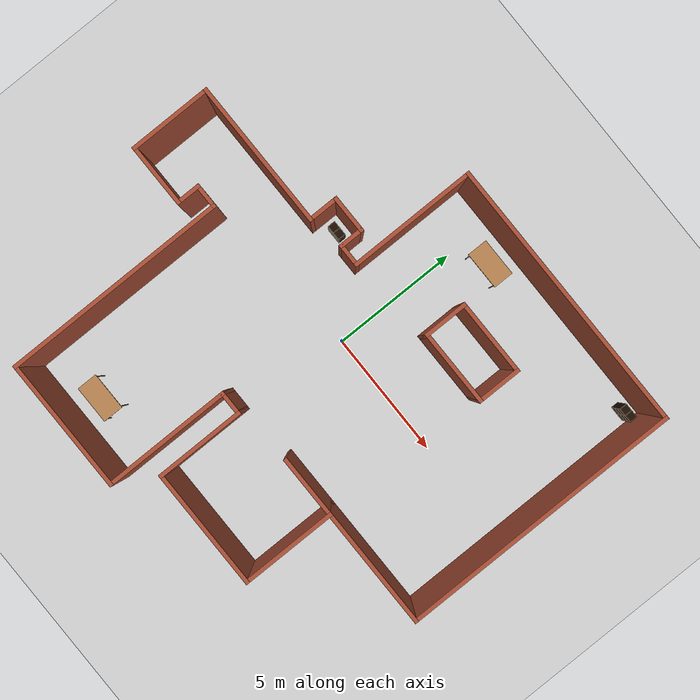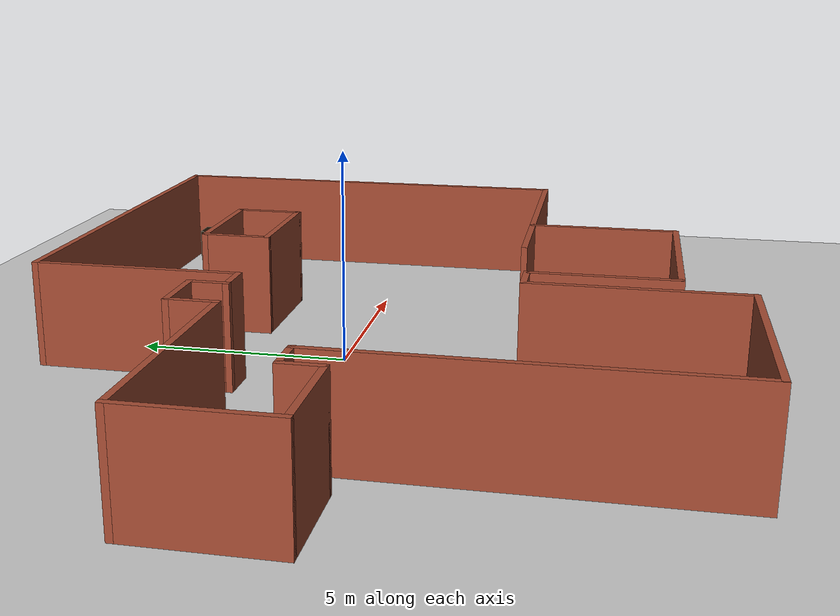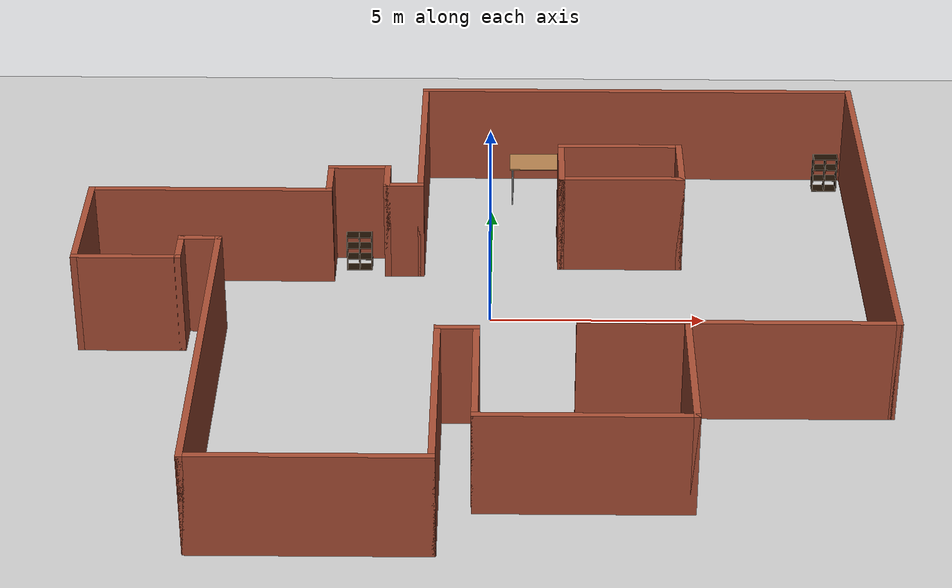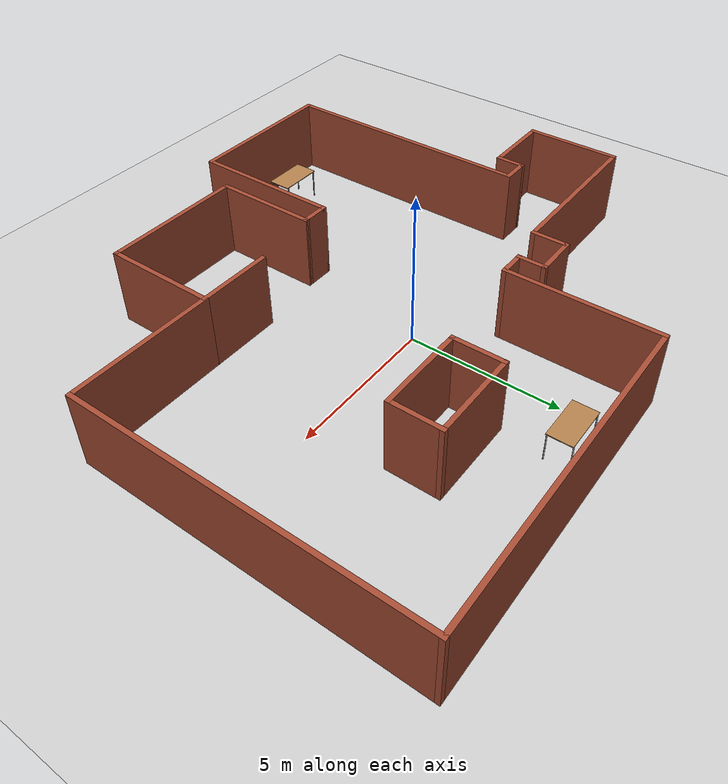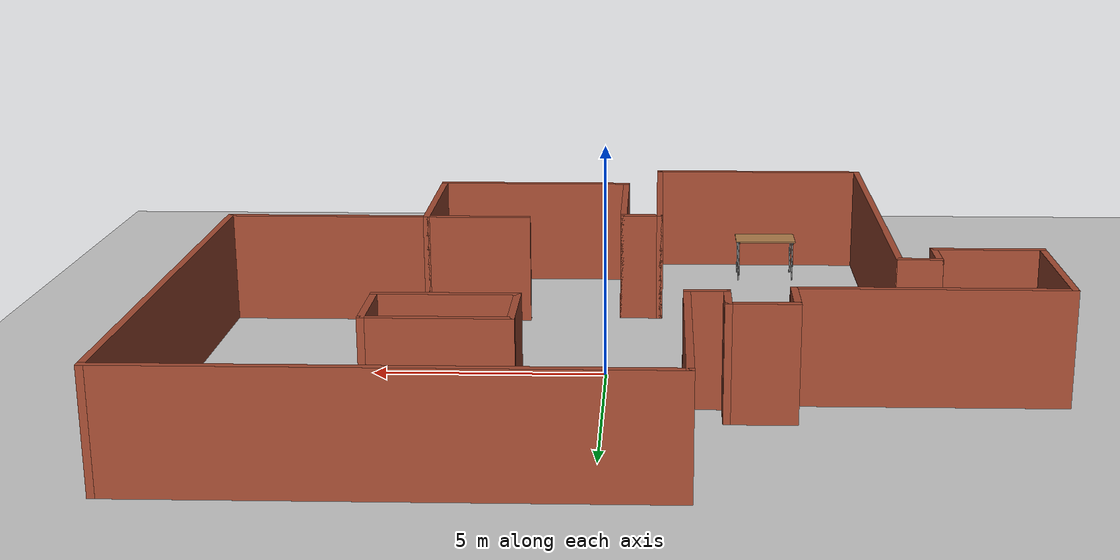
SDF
<sdf version="1.6">
 <world name="default">
  <light name="sun" type="directional">
   <pose>0 0 10 0 -0 0</pose>
   <diffuse>0.8 0.8 0.8 1</diffuse>
   <specular>0.2 0.2 0.2 1</specular>
   <attenuation>
    <range>1000</range>
    <constant>0.9</constant>
    <linear>0.01</linear>
    <quadratic>0.001</quadratic>
   </attenuation>
   <direction>-0.5 0.1 -0.9</direction>
  </light>
  <model name="ground_plane">
   <static>1</static>
   <link name="link">
    <collision name="collision">
     <geometry><plane><normal>0 0 1</normal><size>100 100</size></plane></geometry>
     <surface>
      <contact><collide_bitmask>65535</collide_bitmask></contact>
      <friction><ode><mu>100</mu><mu2>50</mu2></ode></friction>
     </surface>
    </collision>
    <visual name="visual">
     <cast_shadows>0</cast_shadows>
     <geometry><plane><normal>0 0 1</normal><size>100 100</size></plane></geometry>
     <material>
      <script><uri>file://media/materials/scripts/gazebo.material</uri><name>Gazebo/Grey</name></script>
     </material>
    </visual>
   </link>
  </model>
  <gravity>0 0 -9.8</gravity>
  <magnetic_field>6e-06 2.3e-05 -4.2e-05</magnetic_field>
  <atmosphere type="adiabatic"/>
  <physics name="default_physics" default="0" type="ode">
   <max_step_size>0.001</max_step_size>
   <real_time_factor>1</real_time_factor>
   <real_time_update_rate>1000</real_time_update_rate>
  </physics>
  <scene><ambient>0.4 0.4 0.4 1</ambient><background>0.7 0.7 0.7 1</background><shadows>1</shadows></scene>
  <audio><device>default</device></audio>
  <spherical_coordinates>
   <surface_model>EARTH_WGS84</surface_model>
   <latitude_deg>0</latitude_deg>
   <longitude_deg>0</longitude_deg>
   <elevation>0</elevation>
   <heading_deg>0</heading_deg>
  </spherical_coordinates>
  <model name="map_124">
   <pose>-0.253332 -1.11751 0 0 -0 0</pose>
   <link name="Wall_21">
    <collision name="Wall_21_Collision">
     <geometry><box><size>1 0.15 2.5</size></box></geometry>
     <pose>0 0 1.25 0 -0 0</pose>
    </collision>
    <visual name="Wall_21_Visual">
     <pose>0 0 1.25 0 -0 0</pose>
     <geometry><box><size>1 0.15 2.5</size></box></geometry>
     <material>
      <script><uri>file://media/materials/scripts/gazebo.material</uri><name>Gazebo/Bricks</name></script>
      <ambient>1 1 1 1</ambient>
     </material>
     <meta><layer>0</layer></meta>
    </visual>
    <pose>-2.225 3.55 0 0 -0 1.5708</pose>
   </link>
   <link name="Wall_22">
    <collision name="Wall_22_Collision">
     <geometry><box><size>1.5 0.15 2.5</size></box></geometry>
     <pose>0 0 1.25 0 -0 0</pose>
    </collision>
    <visual name="Wall_22_Visual">
     <pose>0 0 1.25 0 -0 0</pose>
     <geometry><box><size>1.5 0.15 2.5</size></box></geometry>
     <material>
      <script><uri>file://media/materials/scripts/gazebo.material</uri><name>Gazebo/Bricks</name></script>
      <ambient>1 1 1 1</ambient>
     </material>
     <meta><layer>0</layer></meta>
    </visual>
    <pose>-2.9 3.975 0 0 -0 3.14159</pose>
   </link>
   <link name="Wall_23">
    <collision name="Wall_23_Collision">
     <geometry><box><size>1.25 0.15 2.5</size></box></geometry>
     <pose>0 0 1.25 0 -0 0</pose>
    </collision>
    <visual name="Wall_23_Visual">
     <pose>0 0 1.25 0 -0 0</pose>
     <geometry><box><size>1.25 0.15 2.5</size></box></geometry>
     <material>
      <script><uri>file://media/materials/scripts/gazebo.material</uri><name>Gazebo/Bricks</name></script>
      <ambient>1 1 1 1</ambient>
     </material>
     <meta><layer>0</layer></meta>
    </visual>
    <pose>-3.575 3.425 0 0 -0 -1.5708</pose>
   </link>
   <link name="Wall_24">
    <collision name="Wall_24_Collision">
     <geometry><box><size>5.75 0.15 2.5</size></box></geometry>
     <pose>0 0 1.25 0 -0 0</pose>
    </collision>
    <visual name="Wall_24_Visual">
     <pose>0 0 1.25 0 -0 0</pose>
     <geometry><box><size>5.75 0.15 2.5</size></box></geometry>
     <material>
      <script><uri>file://media/materials/scripts/gazebo.material</uri><name>Gazebo/Bricks</name></script>
      <ambient>1 1 1 1</ambient>
     </material>
     <meta><layer>0</layer></meta>
    </visual>
    <pose>-6.375 2.875 0 0 -0 3.14159</pose>
   </link>
   <link name="Wall_25">
    <collision name="Wall_25_Collision">
     <geometry><box><size>3.25 0.15 2.5</size></box></geometry>
     <pose>0 0 1.25 0 -0 0</pose>
    </collision>
    <visual name="Wall_25_Visual">
     <pose>0 0 1.25 0 -0 0</pose>
     <geometry><box><size>3.25 0.15 2.5</size></box></geometry>
     <material>
      <script><uri>file://media/materials/scripts/gazebo.material</uri><name>Gazebo/Bricks</name></script>
      <ambient>1 1 1 1</ambient>
     </material>
     <meta><layer>0</layer></meta>
    </visual>
    <pose>-9.175 1.325 0 0 -0 -1.5708</pose>
   </link>
   <link name="Wall_26">
    <collision name="Wall_26_Collision">
     <geometry><box><size>2.5 0.15 2.5</size></box></geometry>
     <pose>0 0 1.25 0 -0 0</pose>
    </collision>
    <visual name="Wall_26_Visual">
     <pose>0 0 1.25 0 -0 0</pose>
     <geometry><box><size>2.5 0.15 2.5</size></box></geometry>
     <material>
      <script><uri>file://media/materials/scripts/gazebo.material</uri><name>Gazebo/Bricks</name></script>
      <ambient>1 1 1 1</ambient>
     </material>
     <meta><layer>0</layer></meta>
    </visual>
    <pose>-8 -0.225 0 0 -0 0</pose>
   </link>
   <link name="Wall_27">
    <collision name="Wall_27_Collision">
     <geometry><box><size>1 0.15 2.5</size></box></geometry>
     <pose>0 0 1.25 0 -0 0</pose>
    </collision>
    <visual name="Wall_27_Visual">
     <pose>0 0 1.25 0 -0 0</pose>
     <geometry><box><size>1 0.15 2.5</size></box></geometry>
     <material>
      <script><uri>file://media/materials/scripts/gazebo.material</uri><name>Gazebo/Bricks</name></script>
      <ambient>1 1 1 1</ambient>
     </material>
     <meta><layer>0</layer></meta>
    </visual>
    <pose>-6.825 0.2 0 0 -0 1.5708</pose>
   </link>
   <link name="Wall_28">
    <collision name="Wall_28_Collision">
     <geometry><box><size>1 0.15 2.5</size></box></geometry>
     <pose>0 0 1.25 0 -0 0</pose>
    </collision>
    <visual name="Wall_28_Visual">
     <pose>0 0 1.25 0 -0 0</pose>
     <geometry><box><size>1 0.15 2.5</size></box></geometry>
     <material>
      <script><uri>file://media/materials/scripts/gazebo.material</uri><name>Gazebo/Bricks</name></script>
      <ambient>1 1 1 1</ambient>
     </material>
     <meta><layer>0</layer></meta>
    </visual>
    <pose>-6.4 0.625 0 0 -0 0</pose>
   </link>
   <link name="Wall_29">
    <collision name="Wall_29_Collision">
     <geometry><box><size>8.75 0.15 2.5</size></box></geometry>
     <pose>0 0 1.25 0 -0 0</pose>
    </collision>
    <visual name="Wall_29_Visual">
     <pose>0 0 1.25 0 -0 0</pose>
     <geometry><box><size>8.75 0.15 2.5</size></box></geometry>
     <material>
      <script><uri>file://media/materials/scripts/gazebo.material</uri><name>Gazebo/Bricks</name></script>
      <ambient>1 1 1 1</ambient>
     </material>
     <meta><layer>0</layer></meta>
    </visual>
    <pose>-5.975 -3.675 0 0 -0 -1.5708</pose>
   </link>
   <link name="Wall_30">
    <collision name="Wall_30_Collision">
     <geometry><box><size>5.25 0.15 2.5</size></box></geometry>
     <pose>0 0 1.25 0 -0 0</pose>
    </collision>
    <visual name="Wall_30_Visual">
     <pose>0 0 1.25 0 -0 0</pose>
     <geometry><box><size>5.25 0.15 2.5</size></box></geometry>
     <material>
      <script><uri>file://media/materials/scripts/gazebo.material</uri><name>Gazebo/Bricks</name></script>
      <ambient>1 1 1 1</ambient>
     </material>
     <meta><layer>0</layer></meta>
    </visual>
    <pose>-3.425 -7.975 0 0 -0 0</pose>
   </link>
   <link name="Wall_31">
    <collision name="Wall_31_Collision">
     <geometry><box><size>5 0.15 2.5</size></box></geometry>
     <pose>0 0 1.25 0 -0 0</pose>
    </collision>
    <visual name="Wall_31_Visual">
     <pose>0 0 1.25 0 -0 0</pose>
     <geometry><box><size>5 0.15 2.5</size></box></geometry>
     <material>
      <script><uri>file://media/materials/scripts/gazebo.material</uri><name>Gazebo/Bricks</name></script>
      <ambient>1 1 1 1</ambient>
     </material>
     <meta><layer>0</layer></meta>
    </visual>
    <pose>-0.875 -5.55 0 0 -0 1.5708</pose>
   </link>
   <link name="Wall_32">
    <collision name="Wall_32_Collision">
     <geometry><box><size>1 0.15 2.5</size></box></geometry>
     <pose>0 0 1.25 0 -0 0</pose>
    </collision>
    <visual name="Wall_32_Visual">
     <pose>0 0 1.25 0 -0 0</pose>
     <geometry><box><size>1 0.15 2.5</size></box></geometry>
     <material>
      <script><uri>file://media/materials/scripts/gazebo.material</uri><name>Gazebo/Bricks</name></script>
      <ambient>1 1 1 1</ambient>
     </material>
     <meta><layer>0</layer></meta>
    </visual>
    <pose>-0.450001 -3.125 0 0 -0 0</pose>
   </link>
   <link name="Wall_33">
    <collision name="Wall_33_Collision">
     <geometry><box><size>3.5 0.15 2.5</size></box></geometry>
     <pose>0 0 1.25 0 -0 0</pose>
    </collision>
    <visual name="Wall_33_Visual">
     <pose>0 0 1.25 0 -0 0</pose>
     <geometry><box><size>3.5 0.15 2.5</size></box></geometry>
     <material>
      <script><uri>file://media/materials/scripts/gazebo.material</uri><name>Gazebo/Bricks</name></script>
      <ambient>1 1 1 1</ambient>
     </material>
     <meta><layer>0</layer></meta>
    </visual>
    <pose>-0.025 -4.8 0 0 -0 -1.5708</pose>
   </link>
   <link name="Wall_35">
    <collision name="Wall_35_Collision">
     <geometry><box><size>4.75 0.15 2.5</size></box></geometry>
     <pose>0 0 1.25 0 -0 0</pose>
    </collision>
    <visual name="Wall_35_Visual">
     <pose>0 0 1.25 0 -0 0</pose>
     <geometry><box><size>4.75 0.15 2.5</size></box></geometry>
     <material>
      <script><uri>file://media/materials/scripts/gazebo.material</uri><name>Gazebo/Bricks</name></script>
      <ambient>1 1 1 1</ambient>
     </material>
     <meta><layer>0</layer></meta>
    </visual>
    <pose>2.275 -6.475 0 0 -0 0</pose>
   </link>
   <link name="Wall_36">
    <collision name="Wall_36_Collision">
     <geometry><box><size>3.75 0.15 2.5</size></box></geometry>
     <pose>0 0 1.25 0 -0 0</pose>
    </collision>
    <visual name="Wall_36_Visual">
     <pose>0 0 1.25 0 -0 0</pose>
     <geometry><box><size>3.75 0.15 2.5</size></box></geometry>
     <material>
      <script><uri>file://media/materials/scripts/gazebo.material</uri><name>Gazebo/Bricks</name></script>
      <ambient>1 1 1 1</ambient>
     </material>
     <meta><layer>0</layer></meta>
    </visual>
    <pose>4.575 -4.675 0 0 -0 1.5708</pose>
   </link>
   <link name="Wall_37">
    <collision name="Wall_37_Collision">
     <geometry><box><size>2.5 0.15 2.5</size></box></geometry>
     <pose>0 0 1.25 0 -0 0</pose>
    </collision>
    <visual name="Wall_37_Visual">
     <pose>0 0 1.25 0 -0 0</pose>
     <geometry><box><size>2.5 0.15 2.5</size></box></geometry>
     <material>
      <script><uri>file://media/materials/scripts/gazebo.material</uri><name>Gazebo/Bricks</name></script>
      <ambient>1 1 1 1</ambient>
     </material>
     <meta><layer>0</layer></meta>
    </visual>
    <pose>3.4 -2.875 0 0 -0 3.14159</pose>
   </link>
   <link name="Wall_39">
    <collision name="Wall_39_Collision">
     <geometry><box><size>4.75 0.15 2.5</size></box></geometry>
     <pose>0 0 1.25 0 -0 0</pose>
    </collision>
    <visual name="Wall_39_Visual">
     <pose>0 0 1.25 0 -0 0</pose>
     <geometry><box><size>4.75 0.15 2.5</size></box></geometry>
     <material>
      <script><uri>file://media/materials/scripts/gazebo.material</uri><name>Gazebo/Bricks</name></script>
      <ambient>1 1 1 1</ambient>
     </material>
     <meta><layer>0</layer></meta>
    </visual>
    <pose>6.875 -2.875 0 0 -0 0</pose>
   </link>
   <link name="Wall_40">
    <collision name="Wall_40_Collision">
     <geometry><box><size>11 0.15 2.5</size></box></geometry>
     <pose>0 0 1.25 0 -0 0</pose>
    </collision>
    <visual name="Wall_40_Visual">
     <pose>0 0 1.25 0 -0 0</pose>
     <geometry><box><size>11 0.15 2.5</size></box></geometry>
     <material>
      <script><uri>file://media/materials/scripts/gazebo.material</uri><name>Gazebo/Bricks</name></script>
      <ambient>1 1 1 1</ambient>
     </material>
     <meta><layer>0</layer></meta>
    </visual>
    <pose>9.175 2.55 0 0 -0 1.5708</pose>
   </link>
   <link name="Wall_41">
    <collision name="Wall_41_Collision">
     <geometry><box><size>10.75 0.15 2.5</size></box></geometry>
     <pose>0 0 1.25 0 -0 0</pose>
    </collision>
    <visual name="Wall_41_Visual">
     <pose>0 0 1.25 0 -0 0</pose>
     <geometry><box><size>10.75 0.15 2.5</size></box></geometry>
     <material>
      <script><uri>file://media/materials/scripts/gazebo.material</uri><name>Gazebo/Bricks</name></script>
      <ambient>1 1 1 1</ambient>
     </material>
     <meta><layer>0</layer></meta>
    </visual>
    <pose>3.875 7.975 0 0 -0 3.14159</pose>
   </link>
   <link name="Wall_45">
    <collision name="Wall_45_Collision">
     <geometry><box><size>5 0.15 2.5</size></box></geometry>
     <pose>0 0 1.25 0 -0 0</pose>
    </collision>
    <visual name="Wall_45_Visual">
     <pose>0 0 1.25 0 -0 0</pose>
     <geometry><box><size>5 0.15 2.5</size></box></geometry>
     <material>
      <script><uri>file://media/materials/scripts/gazebo.material</uri><name>Gazebo/Bricks</name></script>
      <ambient>1 1 1 1</ambient>
     </material>
     <meta><layer>0</layer></meta>
    </visual>
    <pose>-1.425 5.55 0 0 -0 -1.5708</pose>
   </link>
   <link name="Wall_46">
    <collision name="Wall_46_Collision">
     <geometry><box><size>0.95 0.15 2.5</size></box></geometry>
     <pose>0 0 1.25 0 -0 0</pose>
    </collision>
    <visual name="Wall_46_Visual">
     <pose>0 0 1.25 0 -0 0</pose>
     <geometry><box><size>0.95 0.15 2.5</size></box></geometry>
     <material>
      <script><uri>file://media/materials/scripts/gazebo.material</uri><name>Gazebo/Bricks</name></script>
      <ambient>1 1 1 1</ambient>
     </material>
     <meta><layer>0</layer></meta>
    </visual>
    <pose>-1.825 3.125 0 0 -0 3.14159</pose>
   </link>
   <link name="Wall_48">
    <collision name="Wall_48_Collision">
     <geometry><box><size>1.75 0.15 2.5</size></box></geometry>
     <pose>0 0 1.25 0 -0 0</pose>
    </collision>
    <visual name="Wall_48_Visual">
     <pose>0 0 1.25 0 -0 0</pose>
     <geometry><box><size>1.75 0.15 2.5</size></box></geometry>
     <material>
      <script><uri>file://media/materials/scripts/gazebo.material</uri><name>Gazebo/Bricks</name></script>
      <ambient>1 1 1 1</ambient>
     </material>
     <meta><layer>0</layer></meta>
    </visual>
    <pose>1.92464 4.2849 0 0 -0 -1.5708</pose>
   </link>
   <link name="Wall_49">
    <collision name="Wall_49_Collision">
     <geometry><box><size>3 0.15 2.5</size></box></geometry>
     <pose>0 0 1.25 0 -0 0</pose>
    </collision>
    <visual name="Wall_49_Visual">
     <pose>0 0 1.25 0 -0 0</pose>
     <geometry><box><size>3 0.15 2.5</size></box></geometry>
     <material>
      <script><uri>file://media/materials/scripts/gazebo.material</uri><name>Gazebo/Bricks</name></script>
      <ambient>1 1 1 1</ambient>
     </material>
     <meta><layer>0</layer></meta>
    </visual>
    <pose>3.34964 3.4849 0 0 -0 0</pose>
   </link>
   <link name="Wall_50">
    <collision name="Wall_50_Collision">
     <geometry><box><size>1.75 0.15 2.5</size></box></geometry>
     <pose>0 0 1.25 0 -0 0</pose>
    </collision>
    <visual name="Wall_50_Visual">
     <pose>0 0 1.25 0 -0 0</pose>
     <geometry><box><size>1.75 0.15 2.5</size></box></geometry>
     <material>
      <script><uri>file://media/materials/scripts/gazebo.material</uri><name>Gazebo/Bricks</name></script>
      <ambient>1 1 1 1</ambient>
     </material>
     <meta><layer>0</layer></meta>
    </visual>
    <pose>4.77464 4.2849 0 0 -0 1.5708</pose>
   </link>
   <link name="Wall_51">
    <collision name="Wall_51_Collision">
     <geometry><box><size>3 0.15 2.5</size></box></geometry>
     <pose>0 0 1.25 0 -0 0</pose>
    </collision>
    <visual name="Wall_51_Visual">
     <pose>0 0 1.25 0 -0 0</pose>
     <geometry><box><size>3 0.15 2.5</size></box></geometry>
     <material>
      <script><uri>file://media/materials/scripts/gazebo.material</uri><name>Gazebo/Bricks</name></script>
      <ambient>1 1 1 1</ambient>
     </material>
     <meta><layer>0</layer></meta>
    </visual>
    <pose>3.34964 5.0849 0 0 -0 3.14159</pose>
   </link>
   <static>1</static>
  </model>
  <model name="table">
   <static>1</static>
   <link name="link">
    <collision name="surface">
     <pose>0 0 1 0 -0 0</pose>
     <geometry><box><size>1.5 0.8 0.03</size></box></geometry>
     <surface><friction><ode><mu>0.6</mu><mu2>0.6</mu2></ode></friction></surface>
    </collision>
    <visual name="visual1">
     <pose>0 0 1 0 -0 0</pose>
     <geometry><box><size>1.5 0.8 0.03</size></box></geometry>
     <material>
      <script><uri>file://media/materials/scripts/gazebo.material</uri><name>Gazebo/Wood</name></script>
     </material>
    </visual>
    <collision name="front_left_leg">
     <pose>0.68 0.38 0.5 0 -0 0</pose>
     <geometry><cylinder><radius>0.02</radius><length>1</length></cylinder></geometry>
    </collision>
    <visual name="front_left_leg">
     <pose>0.68 0.38 0.5 0 -0 0</pose>
     <geometry><cylinder><radius>0.02</radius><length>1</length></cylinder></geometry>
     <material>
      <script><uri>file://media/materials/scripts/gazebo.material</uri><name>Gazebo/Grey</name></script>
     </material>
    </visual>
    <collision name="front_right_leg">
     <pose>0.68 -0.38 0.5 0 -0 0</pose>
     <geometry><cylinder><radius>0.02</radius><length>1</length></cylinder></geometry>
    </collision>
    <visual name="front_right_leg">
     <pose>0.68 -0.38 0.5 0 -0 0</pose>
     <geometry><cylinder><radius>0.02</radius><length>1</length></cylinder></geometry>
     <material>
      <script><uri>file://media/materials/scripts/gazebo.material</uri><name>Gazebo/Grey</name></script>
     </material>
    </visual>
    <collision name="back_right_leg">
     <pose>-0.68 -0.38 0.5 0 -0 0</pose>
     <geometry><cylinder><radius>0.02</radius><length>1</length></cylinder></geometry>
    </collision>
    <visual name="back_right_leg">
     <pose>-0.68 -0.38 0.5 0 -0 0</pose>
     <geometry><cylinder><radius>0.02</radius><length>1</length></cylinder></geometry>
     <material>
      <script><uri>file://media/materials/scripts/gazebo.material</uri><name>Gazebo/Grey</name></script>
     </material>
    </visual>
    <collision name="back_left_leg">
     <pose>-0.68 0.38 0.5 0 -0 0</pose>
     <geometry><cylinder><radius>0.02</radius><length>1</length></cylinder></geometry>
    </collision>
    <visual name="back_left_leg">
     <pose>-0.68 0.38 0.5 0 -0 0</pose>
     <geometry><cylinder><radius>0.02</radius><length>1</length></cylinder></geometry>
     <material>
      <script><uri>file://media/materials/scripts/gazebo.material</uri><name>Gazebo/Grey</name></script>
     </material>
    </visual>
   </link>
   <pose>-3.82763 -7.9312 0 0 -0 0</pose>
  </model>
  <model name="6_Cube_StorageE">
   <link name="Wall_0">
    <pose>0 0 0.01 0 -0 0</pose>
    <inertial>
     <mass>1.6201</mass>
     <inertia><ixx>0.0119</ixx><iyy>0.0631</iyy><izz>0.0513</izz><ixy>0</ixy><ixz>0</ixz><iyz>0</iyz></inertia>
    </inertial>
    <collision name="Wall_0_Collision"><geometry><box><size>0.616 0.296 0.02</size></box></geometry></collision>
    <visual name="Wall_0_Visual">
     <geometry><box><size>0.616 0.296 0.02</size></box></geometry>
     <material>
      <script><uri>file://media/materials/scripts/gazebo.material</uri><name>Gazebo/Grey</name></script>
      <ambient>0.105882 0.0509804 0 1</ambient>
     </material>
    </visual>
   </link>
   <joint name="0_2" type="fixed">
    <pose>-0.308 0 0 0 -0 0</pose>
    <parent>Wall_2</parent>
    <child>Wall_0</child>
    <axis>
     <xyz>1 0 0</xyz>
     <use_parent_model_frame>0</use_parent_model_frame>
     <limit><lower>-1e+16</lower><upper>1e+16</upper></limit>
    </axis>
   </joint>
   <joint name="0_12" type="fixed">
    <parent>Wall_12</parent>
    <child>Wall_0</child>
    <axis>
     <xyz>0 0 1</xyz>
     <use_parent_model_frame>0</use_parent_model_frame>
     <limit><lower>-1e+16</lower><upper>1e+16</upper></limit>
    </axis>
   </joint>
   <joint name="0_4" type="fixed">
    <pose>0.308 0 0 0 -0 0</pose>
    <parent>Wall_4</parent>
    <child>Wall_0</child>
    <axis>
     <xyz>1 0 0</xyz>
     <use_parent_model_frame>0</use_parent_model_frame>
     <limit><lower>-1e+16</lower><upper>1e+16</upper></limit>
    </axis>
   </joint>
   <link name="Wall_10">
    <pose>0 0 0.61 0 -0 0</pose>
    <inertial>
     <mass>1.6201</mass>
     <inertia><ixx>0.0119</ixx><iyy>0.0631</iyy><izz>0.0513</izz><ixy>0</ixy><ixz>0</ixz><iyz>0</iyz></inertia>
    </inertial>
    <collision name="Wall_10_Collision"><geometry><box><size>0.616 0.296 0.02</size></box></geometry></collision>
    <visual name="Wall_10_Visual">
     <geometry><box><size>0.616 0.296 0.02</size></box></geometry>
     <material>
      <script><uri>file://media/materials/scripts/gazebo.material</uri><name>Gazebo/Grey</name></script>
      <ambient>0.105882 0.0509804 0 1</ambient>
     </material>
    </visual>
   </link>
   <joint name="10_2" type="fixed">
    <pose>-0.308 0 0 0 -0 0</pose>
    <parent>Wall_2</parent>
    <child>Wall_10</child>
    <axis>
     <xyz>1 0 0</xyz>
     <use_parent_model_frame>0</use_parent_model_frame>
     <limit><lower>-1e+16</lower><upper>1e+16</upper></limit>
    </axis>
   </joint>
   <joint name="10_12" type="fixed">
    <parent>Wall_12</parent>
    <child>Wall_10</child>
    <axis>
     <xyz>0 0 1</xyz>
     <use_parent_model_frame>0</use_parent_model_frame>
     <limit><lower>-1e+16</lower><upper>1e+16</upper></limit>
    </axis>
   </joint>
   <joint name="10_4" type="fixed">
    <pose>0.308 0 0 0 -0 0</pose>
    <parent>Wall_4</parent>
    <child>Wall_10</child>
    <axis>
     <xyz>1 0 0</xyz>
     <use_parent_model_frame>0</use_parent_model_frame>
     <limit><lower>-1e+16</lower><upper>1e+16</upper></limit>
    </axis>
   </joint>
   <link name="Wall_12">
    <pose>0 0 0.4575 0 -0 0</pose>
    <inertial>
     <mass>2.4065</mass>
     <inertia><ixx>0.0177</ixx><iyy>0.1855</iyy><izz>0.168</izz><ixy>0</ixy><ixz>0</ixz><iyz>0</iyz></inertia>
    </inertial>
    <collision name="Wall_12_Collision"><geometry><box><size>0.02 0.296 0.915</size></box></geometry></collision>
    <visual name="Wall_12_Visual">
     <geometry><box><size>0.02 0.296 0.915</size></box></geometry>
     <material>
      <script><uri>file://media/materials/scripts/gazebo.material</uri><name>Gazebo/Grey</name></script>
      <ambient>0.105882 0.0509804 0 1</ambient>
     </material>
    </visual>
   </link>
   <link name="Wall_2">
    <pose>-0.298 0 0.4575 0 -0 0</pose>
    <inertial>
     <mass>2.4065</mass>
     <inertia><ixx>0.0177</ixx><iyy>0.1855</iyy><izz>0.168</izz><ixy>0</ixy><ixz>0</ixz><iyz>0</iyz></inertia>
    </inertial>
    <collision name="Wall_2_Collision"><geometry><box><size>0.02 0.296 0.915</size></box></geometry></collision>
    <visual name="Wall_2_Visual">
     <geometry><box><size>0.02 0.296 0.915</size></box></geometry>
     <material>
      <script><uri>file://media/materials/scripts/gazebo.material</uri><name>Gazebo/Grey</name></script>
      <ambient>0.105882 0.0509804 0 1</ambient>
     </material>
    </visual>
   </link>
   <link name="Wall_4">
    <pose>0.298 0 0.4575 0 -0 0</pose>
    <inertial>
     <mass>2.4065</mass>
     <inertia><ixx>0.0177</ixx><iyy>0.1855</iyy><izz>0.168</izz><ixy>0</ixy><ixz>0</ixz><iyz>0</iyz></inertia>
    </inertial>
    <collision name="Wall_4_Collision"><geometry><box><size>0.02 0.296 0.915</size></box></geometry></collision>
    <visual name="Wall_4_Visual">
     <geometry><box><size>0.02 0.296 0.915</size></box></geometry>
     <material>
      <script><uri>file://media/materials/scripts/gazebo.material</uri><name>Gazebo/Grey</name></script>
      <ambient>0.105882 0.0509804 0 1</ambient>
     </material>
    </visual>
   </link>
   <link name="Wall_6">
    <pose>0 0 0.905 0 -0 0</pose>
    <inertial>
     <mass>1.6201</mass>
     <inertia><ixx>0.0119</ixx><iyy>0.0631</iyy><izz>0.0513</izz><ixy>0</ixy><ixz>0</ixz><iyz>0</iyz></inertia>
    </inertial>
    <collision name="Wall_6_Collision"><geometry><box><size>0.616 0.296 0.02</size></box></geometry></collision>
    <visual name="Wall_6_Visual">
     <geometry><box><size>0.616 0.296 0.02</size></box></geometry>
     <material>
      <script><uri>file://media/materials/scripts/gazebo.material</uri><name>Gazebo/Grey</name></script>
      <ambient>0.105882 0.0509804 0 1</ambient>
     </material>
    </visual>
   </link>
   <joint name="6_2" type="fixed">
    <pose>-0.308 0 0 0 -0 0</pose>
    <parent>Wall_2</parent>
    <child>Wall_6</child>
    <axis>
     <xyz>2 0 0</xyz>
     <use_parent_model_frame>0</use_parent_model_frame>
     <limit><lower>-1e+16</lower><upper>1e+16</upper></limit>
    </axis>
   </joint>
   <joint name="6_12" type="fixed">
    <parent>Wall_12</parent>
    <child>Wall_6</child>
    <axis>
     <xyz>0 0 1</xyz>
     <use_parent_model_frame>0</use_parent_model_frame>
     <limit><lower>-1e+16</lower><upper>1e+16</upper></limit>
    </axis>
   </joint>
   <joint name="6_4" type="fixed">
    <pose>0.308 0 0 0 -0 0</pose>
    <parent>Wall_4</parent>
    <child>Wall_6</child>
    <axis>
     <xyz>1 0 0</xyz>
     <use_parent_model_frame>0</use_parent_model_frame>
     <limit><lower>-1e+16</lower><upper>1e+16</upper></limit>
    </axis>
   </joint>
   <link name="Wall_8">
    <pose>0 0 0.305 0 -0 0</pose>
    <inertial>
     <mass>1.6201</mass>
     <inertia><ixx>0.0119</ixx><iyy>0.0631</iyy><izz>0.0513</izz><ixy>0</ixy><ixz>0</ixz><iyz>0</iyz></inertia>
    </inertial>
    <collision name="Wall_8_Collision"><geometry><box><size>0.616 0.296 0.02</size></box></geometry></collision>
    <visual name="Wall_8_Visual">
     <geometry><box><size>0.616 0.296 0.02</size></box></geometry>
     <material>
      <script><uri>file://media/materials/scripts/gazebo.material</uri><name>Gazebo/Grey</name></script>
      <ambient>0.105882 0.0509804 0 1</ambient>
     </material>
    </visual>
   </link>
   <joint name="8_2" type="fixed">
    <pose>-0.308 0 0 0 -0 0</pose>
    <parent>Wall_2</parent>
    <child>Wall_8</child>
    <axis>
     <xyz>1 0 0</xyz>
     <use_parent_model_frame>0</use_parent_model_frame>
     <limit><lower>-1e+16</lower><upper>1e+16</upper></limit>
    </axis>
   </joint>
   <joint name="8_12" type="fixed">
    <parent>Wall_12</parent>
    <child>Wall_8</child>
    <axis>
     <xyz>0 0 1</xyz>
     <use_parent_model_frame>0</use_parent_model_frame>
     <limit><lower>-1e+16</lower><upper>1e+16</upper></limit>
    </axis>
   </joint>
   <joint name="8_4" type="fixed">
    <pose>0.308 0 0 0 -0 0</pose>
    <parent>Wall_4</parent>
    <child>Wall_8</child>
    <axis>
     <xyz>1 0 0</xyz>
     <use_parent_model_frame>0</use_parent_model_frame>
     <limit><lower>-1e+16</lower><upper>1e+16</upper></limit>
    </axis>
   </joint>
   <static>1</static>
   <pose>-3.17967 2.35101 0 0 -0 0</pose>
  </model>
  <model name="table_0">
   <static>1</static>
   <link name="link">
    <collision name="surface">
     <pose>0 0 1 0 -0 0</pose>
     <geometry><box><size>1.5 0.8 0.03</size></box></geometry>
     <surface><friction><ode><mu>0.6</mu><mu2>0.6</mu2></ode></friction></surface>
    </collision>
    <visual name="visual1">
     <pose>0 0 1 0 -0 0</pose>
     <geometry><box><size>1.5 0.8 0.03</size></box></geometry>
     <material>
      <script><uri>file://media/materials/scripts/gazebo.material</uri><name>Gazebo/Wood</name></script>
     </material>
    </visual>
    <collision name="front_left_leg">
     <pose>0.68 0.38 0.5 0 -0 0</pose>
     <geometry><cylinder><radius>0.02</radius><length>1</length></cylinder></geometry>
    </collision>
    <visual name="front_left_leg">
     <pose>0.68 0.38 0.5 0 -0 0</pose>
     <geometry><cylinder><radius>0.02</radius><length>1</length></cylinder></geometry>
     <material>
      <script><uri>file://media/materials/scripts/gazebo.material</uri><name>Gazebo/Grey</name></script>
     </material>
    </visual>
    <collision name="front_right_leg">
     <pose>0.68 -0.38 0.5 0 -0 0</pose>
     <geometry><cylinder><radius>0.02</radius><length>1</length></cylinder></geometry>
    </collision>
    <visual name="front_right_leg">
     <pose>0.68 -0.38 0.5 0 -0 0</pose>
     <geometry><cylinder><radius>0.02</radius><length>1</length></cylinder></geometry>
     <material>
      <script><uri>file://media/materials/scripts/gazebo.material</uri><name>Gazebo/Grey</name></script>
     </material>
    </visual>
    <collision name="back_right_leg">
     <pose>-0.68 -0.38 0.5 0 -0 0</pose>
     <geometry><cylinder><radius>0.02</radius><length>1</length></cylinder></geometry>
    </collision>
    <visual name="back_right_leg">
     <pose>-0.68 -0.38 0.5 0 -0 0</pose>
     <geometry><cylinder><radius>0.02</radius><length>1</length></cylinder></geometry>
     <material>
      <script><uri>file://media/materials/scripts/gazebo.material</uri><name>Gazebo/Grey</name></script>
     </material>
    </visual>
    <collision name="back_left_leg">
     <pose>-0.68 0.38 0.5 0 -0 0</pose>
     <geometry><cylinder><radius>0.02</radius><length>1</length></cylinder></geometry>
    </collision>
    <visual name="back_left_leg">
     <pose>-0.68 0.38 0.5 0 -0 0</pose>
     <geometry><cylinder><radius>0.02</radius><length>1</length></cylinder></geometry>
     <material>
      <script><uri>file://media/materials/scripts/gazebo.material</uri><name>Gazebo/Grey</name></script>
     </material>
    </visual>
   </link>
   <pose>1.18991 5.83306 0 0 -0 0</pose>
  </model>
  <model name="6_Cube_StorageE_0">
   <link name="Wall_0">
    <pose>0 0 0.01 0 -0 0</pose>
    <inertial>
     <mass>1.6201</mass>
     <inertia><ixx>0.0119</ixx><iyy>0.0631</iyy><izz>0.0513</izz><ixy>0</ixy><ixz>0</ixz><iyz>0</iyz></inertia>
    </inertial>
    <collision name="Wall_0_Collision"><geometry><box><size>0.616 0.296 0.02</size></box></geometry></collision>
    <visual name="Wall_0_Visual">
     <geometry><box><size>0.616 0.296 0.02</size></box></geometry>
     <material>
      <script><uri>file://media/materials/scripts/gazebo.material</uri><name>Gazebo/Grey</name></script>
      <ambient>0.105882 0.0509804 0 1</ambient>
     </material>
    </visual>
   </link>
   <joint name="0_2" type="fixed">
    <pose>-0.308 0 0 0 -0 0</pose>
    <parent>Wall_2</parent>
    <child>Wall_0</child>
    <axis>
     <xyz>1 0 0</xyz>
     <use_parent_model_frame>0</use_parent_model_frame>
     <limit><lower>-1e+16</lower><upper>1e+16</upper></limit>
    </axis>
   </joint>
   <joint name="0_12" type="fixed">
    <parent>Wall_12</parent>
    <child>Wall_0</child>
    <axis>
     <xyz>0 0 1</xyz>
     <use_parent_model_frame>0</use_parent_model_frame>
     <limit><lower>-1e+16</lower><upper>1e+16</upper></limit>
    </axis>
   </joint>
   <joint name="0_4" type="fixed">
    <pose>0.308 0 0 0 -0 0</pose>
    <parent>Wall_4</parent>
    <child>Wall_0</child>
    <axis>
     <xyz>1 0 0</xyz>
     <use_parent_model_frame>0</use_parent_model_frame>
     <limit><lower>-1e+16</lower><upper>1e+16</upper></limit>
    </axis>
   </joint>
   <link name="Wall_10">
    <pose>0 0 0.61 0 -0 0</pose>
    <inertial>
     <mass>1.6201</mass>
     <inertia><ixx>0.0119</ixx><iyy>0.0631</iyy><izz>0.0513</izz><ixy>0</ixy><ixz>0</ixz><iyz>0</iyz></inertia>
    </inertial>
    <collision name="Wall_10_Collision"><geometry><box><size>0.616 0.296 0.02</size></box></geometry></collision>
    <visual name="Wall_10_Visual">
     <geometry><box><size>0.616 0.296 0.02</size></box></geometry>
     <material>
      <script><uri>file://media/materials/scripts/gazebo.material</uri><name>Gazebo/Grey</name></script>
      <ambient>0.105882 0.0509804 0 1</ambient>
     </material>
    </visual>
   </link>
   <joint name="10_2" type="fixed">
    <pose>-0.308 0 0 0 -0 0</pose>
    <parent>Wall_2</parent>
    <child>Wall_10</child>
    <axis>
     <xyz>1 0 0</xyz>
     <use_parent_model_frame>0</use_parent_model_frame>
     <limit><lower>-1e+16</lower><upper>1e+16</upper></limit>
    </axis>
   </joint>
   <joint name="10_12" type="fixed">
    <parent>Wall_12</parent>
    <child>Wall_10</child>
    <axis>
     <xyz>0 0 1</xyz>
     <use_parent_model_frame>0</use_parent_model_frame>
     <limit><lower>-1e+16</lower><upper>1e+16</upper></limit>
    </axis>
   </joint>
   <joint name="10_4" type="fixed">
    <pose>0.308 0 0 0 -0 0</pose>
    <parent>Wall_4</parent>
    <child>Wall_10</child>
    <axis>
     <xyz>1 0 0</xyz>
     <use_parent_model_frame>0</use_parent_model_frame>
     <limit><lower>-1e+16</lower><upper>1e+16</upper></limit>
    </axis>
   </joint>
   <link name="Wall_12">
    <pose>0 0 0.4575 0 -0 0</pose>
    <inertial>
     <mass>2.4065</mass>
     <inertia><ixx>0.0177</ixx><iyy>0.1855</iyy><izz>0.168</izz><ixy>0</ixy><ixz>0</ixz><iyz>0</iyz></inertia>
    </inertial>
    <collision name="Wall_12_Collision"><geometry><box><size>0.02 0.296 0.915</size></box></geometry></collision>
    <visual name="Wall_12_Visual">
     <geometry><box><size>0.02 0.296 0.915</size></box></geometry>
     <material>
      <script><uri>file://media/materials/scripts/gazebo.material</uri><name>Gazebo/Grey</name></script>
      <ambient>0.105882 0.0509804 0 1</ambient>
     </material>
    </visual>
   </link>
   <link name="Wall_2">
    <pose>-0.298 0 0.4575 0 -0 0</pose>
    <inertial>
     <mass>2.4065</mass>
     <inertia><ixx>0.0177</ixx><iyy>0.1855</iyy><izz>0.168</izz><ixy>0</ixy><ixz>0</ixz><iyz>0</iyz></inertia>
    </inertial>
    <collision name="Wall_2_Collision"><geometry><box><size>0.02 0.296 0.915</size></box></geometry></collision>
    <visual name="Wall_2_Visual">
     <geometry><box><size>0.02 0.296 0.915</size></box></geometry>
     <material>
      <script><uri>file://media/materials/scripts/gazebo.material</uri><name>Gazebo/Grey</name></script>
      <ambient>0.105882 0.0509804 0 1</ambient>
     </material>
    </visual>
   </link>
   <link name="Wall_4">
    <pose>0.298 0 0.4575 0 -0 0</pose>
    <inertial>
     <mass>2.4065</mass>
     <inertia><ixx>0.0177</ixx><iyy>0.1855</iyy><izz>0.168</izz><ixy>0</ixy><ixz>0</ixz><iyz>0</iyz></inertia>
    </inertial>
    <collision name="Wall_4_Collision"><geometry><box><size>0.02 0.296 0.915</size></box></geometry></collision>
    <visual name="Wall_4_Visual">
     <geometry><box><size>0.02 0.296 0.915</size></box></geometry>
     <material>
      <script><uri>file://media/materials/scripts/gazebo.material</uri><name>Gazebo/Grey</name></script>
      <ambient>0.105882 0.0509804 0 1</ambient>
     </material>
    </visual>
   </link>
   <link name="Wall_6">
    <pose>0 0 0.905 0 -0 0</pose>
    <inertial>
     <mass>1.6201</mass>
     <inertia><ixx>0.0119</ixx><iyy>0.0631</iyy><izz>0.0513</izz><ixy>0</ixy><ixz>0</ixz><iyz>0</iyz></inertia>
    </inertial>
    <collision name="Wall_6_Collision"><geometry><box><size>0.616 0.296 0.02</size></box></geometry></collision>
    <visual name="Wall_6_Visual">
     <geometry><box><size>0.616 0.296 0.02</size></box></geometry>
     <material>
      <script><uri>file://media/materials/scripts/gazebo.material</uri><name>Gazebo/Grey</name></script>
      <ambient>0.105882 0.0509804 0 1</ambient>
     </material>
    </visual>
   </link>
   <joint name="6_2" type="fixed">
    <pose>-0.308 0 0 0 -0 0</pose>
    <parent>Wall_2</parent>
    <child>Wall_6</child>
    <axis>
     <xyz>2 0 0</xyz>
     <use_parent_model_frame>0</use_parent_model_frame>
     <limit><lower>-1e+16</lower><upper>1e+16</upper></limit>
    </axis>
   </joint>
   <joint name="6_12" type="fixed">
    <parent>Wall_12</parent>
    <child>Wall_6</child>
    <axis>
     <xyz>0 0 1</xyz>
     <use_parent_model_frame>0</use_parent_model_frame>
     <limit><lower>-1e+16</lower><upper>1e+16</upper></limit>
    </axis>
   </joint>
   <joint name="6_4" type="fixed">
    <pose>0.308 0 0 0 -0 0</pose>
    <parent>Wall_4</parent>
    <child>Wall_6</child>
    <axis>
     <xyz>1 0 0</xyz>
     <use_parent_model_frame>0</use_parent_model_frame>
     <limit><lower>-1e+16</lower><upper>1e+16</upper></limit>
    </axis>
   </joint>
   <link name="Wall_8">
    <pose>0 0 0.305 0 -0 0</pose>
    <inertial>
     <mass>1.6201</mass>
     <inertia><ixx>0.0119</ixx><iyy>0.0631</iyy><izz>0.0513</izz><ixy>0</ixy><ixz>0</ixz><iyz>0</iyz></inertia>
    </inertial>
    <collision name="Wall_8_Collision"><geometry><box><size>0.616 0.296 0.02</size></box></geometry></collision>
    <visual name="Wall_8_Visual">
     <geometry><box><size>0.616 0.296 0.02</size></box></geometry>
     <material>
      <script><uri>file://media/materials/scripts/gazebo.material</uri><name>Gazebo/Grey</name></script>
      <ambient>0.105882 0.0509804 0 1</ambient>
     </material>
    </visual>
   </link>
   <joint name="8_2" type="fixed">
    <pose>-0.308 0 0 0 -0 0</pose>
    <parent>Wall_2</parent>
    <child>Wall_8</child>
    <axis>
     <xyz>1 0 0</xyz>
     <use_parent_model_frame>0</use_parent_model_frame>
     <limit><lower>-1e+16</lower><upper>1e+16</upper></limit>
    </axis>
   </joint>
   <joint name="8_12" type="fixed">
    <parent>Wall_12</parent>
    <child>Wall_8</child>
    <axis>
     <xyz>0 0 1</xyz>
     <use_parent_model_frame>0</use_parent_model_frame>
     <limit><lower>-1e+16</lower><upper>1e+16</upper></limit>
    </axis>
   </joint>
   <joint name="8_4" type="fixed">
    <pose>0.308 0 0 0 -0 0</pose>
    <parent>Wall_4</parent>
    <child>Wall_8</child>
    <axis>
     <xyz>1 0 0</xyz>
     <use_parent_model_frame>0</use_parent_model_frame>
     <limit><lower>-1e+16</lower><upper>1e+16</upper></limit>
    </axis>
   </joint>
   <static>1</static>
   <pose>8.41597 6.34178 0 0 -0 0</pose>
  </model>
 </world>
</sdf>
